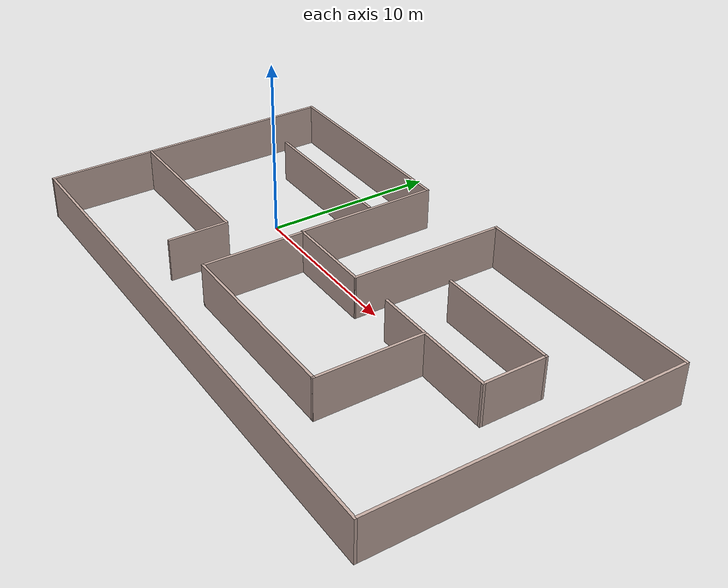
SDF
<?xml version='1.0'?>
<sdf version='1.7'>
  <model name='Floor1'>
    <pose>7.68321 -1.00431 0 0 -0 0</pose>
    <link name='Wall_15'>
      <collision name='Wall_15_Collision'>
        <geometry>
          <box>
            <size>5.25 0.15 2.5</size>
          </box>
        </geometry>
        <pose>0 0 1.25 0 -0 0</pose>
      </collision>
      <visual name='Wall_15_Visual'>
        <pose>0 0 1.25 0 -0 0</pose>
        <geometry>
          <box>
            <size>5.25 0.15 2.5</size>
          </box>
        </geometry>
        <material>
          <script>
            <uri>file://media/materials/scripts/gazebo.material</uri>
            <name>Gazebo/Grey</name>
          </script>
          <ambient>0.760784 0.662745 0.627451 1</ambient>
        </material>
        <meta>
          <layer>0</layer>
        </meta>
      </visual>
      <pose>-0.649999 0.05479 0 0 -0 0</pose>
    </link>
    <link name='Wall_16'>
      <collision name='Wall_16_Collision'>
        <geometry>
          <box>
            <size>9.02014 0.15 2.5</size>
          </box>
        </geometry>
        <pose>0 0 1.25 0 -0 0</pose>
      </collision>
      <visual name='Wall_16_Visual'>
        <pose>0 0 1.25 0 -0 0</pose>
        <geometry>
          <box>
            <size>9.02014 0.15 2.5</size>
          </box>
        </geometry>
        <material>
          <script>
            <uri>file://media/materials/scripts/gazebo.material</uri>
            <name>Gazebo/Grey</name>
          </script>
          <ambient>0.760784 0.662745 0.627451 1</ambient>
        </material>
        <meta>
          <layer>0</layer>
        </meta>
      </visual>
      <pose>1.925 4.48979 0 0 -0 1.56516</pose>
    </link>
    <link name='Wall_17'>
      <collision name='Wall_17_Collision'>
        <geometry>
          <box>
            <size>13.75 0.15 2.5</size>
          </box>
        </geometry>
        <pose>0 0 1.25 0 -0 0</pose>
      </collision>
      <visual name='Wall_17_Visual'>
        <pose>0 0 1.25 0 -0 0</pose>
        <geometry>
          <box>
            <size>13.75 0.15 2.5</size>
          </box>
        </geometry>
        <material>
          <script>
            <uri>file://media/materials/scripts/gazebo.material</uri>
            <name>Gazebo/Grey</name>
          </script>
          <ambient>0.760784 0.662745 0.627451 1</ambient>
        </material>
        <meta>
          <layer>0</layer>
        </meta>
      </visual>
      <pose>8.75 8.92479 0 0 -0 0</pose>
    </link>
    <link name='Wall_18'>
      <collision name='Wall_18_Collision'>
        <geometry>
          <box>
            <size>18 0.15 2.5</size>
          </box>
        </geometry>
        <pose>0 0 1.25 0 -0 0</pose>
      </collision>
      <visual name='Wall_18_Visual'>
        <pose>0 0 1.25 0 -0 0</pose>
        <geometry>
          <box>
            <size>18 0.15 2.5</size>
          </box>
        </geometry>
        <material>
          <script>
            <uri>file://media/materials/scripts/gazebo.material</uri>
            <name>Gazebo/Grey</name>
          </script>
          <ambient>0.760784 0.662745 0.627451 1</ambient>
        </material>
        <meta>
          <layer>0</layer>
        </meta>
      </visual>
      <pose>15.55 -0.00021 0 0 -0 -1.5708</pose>
    </link>
    <link name='Wall_19'>
      <collision name='Wall_19_Collision'>
        <geometry>
          <box>
            <size>31.25 0.15 2.5</size>
          </box>
        </geometry>
        <pose>0 0 1.25 0 -0 0</pose>
      </collision>
      <visual name='Wall_19_Visual'>
        <pose>0 0 1.25 0 -0 0</pose>
        <geometry>
          <box>
            <size>31.25 0.15 2.5</size>
          </box>
        </geometry>
        <material>
          <script>
            <uri>file://media/materials/scripts/gazebo.material</uri>
            <name>Gazebo/Grey</name>
          </script>
          <ambient>0.760784 0.662745 0.627451 1</ambient>
        </material>
        <meta>
          <layer>0</layer>
        </meta>
      </visual>
      <pose>0 -8.92521 0 0 -0 3.14159</pose>
    </link>
    <link name='Wall_20'>
      <collision name='Wall_20_Collision'>
        <geometry>
          <box>
            <size>17.25 0.15 2.5</size>
          </box>
        </geometry>
        <pose>0 0 1.25 0 -0 0</pose>
      </collision>
      <visual name='Wall_20_Visual'>
        <pose>0 0 1.25 0 -0 0</pose>
        <geometry>
          <box>
            <size>17.25 0.15 2.5</size>
          </box>
        </geometry>
        <material>
          <script>
            <uri>file://media/materials/scripts/gazebo.material</uri>
            <name>Gazebo/Grey</name>
          </script>
          <ambient>0.760784 0.662745 0.627451 1</ambient>
        </material>
        <meta>
          <layer>0</layer>
        </meta>
      </visual>
      <pose>-15.55 -0.37521 0 0 -0 1.5708</pose>
    </link>
    <link name='Wall_22'>
      <collision name='Wall_22_Collision'>
        <geometry>
          <box>
            <size>12.5 0.15 2.5</size>
          </box>
        </geometry>
        <pose>0 0 1.25 0 -0 0</pose>
      </collision>
      <visual name='Wall_22_Visual'>
        <pose>0 0 1.25 0 -0 0</pose>
        <geometry>
          <box>
            <size>12.5 0.15 2.5</size>
          </box>
        </geometry>
        <material>
          <script>
            <uri>file://media/materials/scripts/gazebo.material</uri>
            <name>Gazebo/Grey</name>
          </script>
          <ambient>0.760784 0.662745 0.627451 1</ambient>
        </material>
        <meta>
          <layer>0</layer>
        </meta>
      </visual>
      <pose>-9.375 8.17479 0 0 -0 0</pose>
    </link>
    <link name='Wall_23'>
      <collision name='Wall_23_Collision'>
        <geometry>
          <box>
            <size>8.25 0.15 2.5</size>
          </box>
        </geometry>
        <pose>0 0 1.25 0 -0 0</pose>
      </collision>
      <visual name='Wall_23_Visual'>
        <pose>0 0 1.25 0 -0 0</pose>
        <geometry>
          <box>
            <size>8.25 0.15 2.5</size>
          </box>
        </geometry>
        <material>
          <script>
            <uri>file://media/materials/scripts/gazebo.material</uri>
            <name>Gazebo/Grey</name>
          </script>
          <ambient>0.760784 0.662745 0.627451 1</ambient>
        </material>
        <meta>
          <layer>0</layer>
        </meta>
      </visual>
      <pose>-3.2 4.12479 0 0 -0 -1.5708</pose>
    </link>
    <link name='Wall_25'>
      <collision name='Wall_25_Collision'>
        <geometry>
          <box>
            <size>9.5 0.15 2.5</size>
          </box>
        </geometry>
        <pose>0 0 1.25 0 -0 0</pose>
      </collision>
      <visual name='Wall_25_Visual'>
        <pose>0 0 1.25 0 -0 0</pose>
        <geometry>
          <box>
            <size>9.5 0.15 2.5</size>
          </box>
        </geometry>
        <material>
          <script>
            <uri>file://media/materials/scripts/gazebo.material</uri>
            <name>Gazebo/Grey</name>
          </script>
          <ambient>0.760784 0.662745 0.627451 1</ambient>
        </material>
        <meta>
          <layer>0</layer>
        </meta>
      </visual>
      <pose>-10.8367 -2.89597 0 0 -0 0</pose>
    </link>
    <link name='Wall_26'>
      <collision name='Wall_26_Collision'>
        <geometry>
          <box>
            <size>3.5 0.15 2.5</size>
          </box>
        </geometry>
        <pose>0 0 1.25 0 -0 0</pose>
      </collision>
      <visual name='Wall_26_Visual'>
        <pose>0 0 1.25 0 -0 0</pose>
        <geometry>
          <box>
            <size>3.5 0.15 2.5</size>
          </box>
        </geometry>
        <material>
          <script>
            <uri>file://media/materials/scripts/gazebo.material</uri>
            <name>Gazebo/Grey</name>
          </script>
          <ambient>0.760784 0.662745 0.627451 1</ambient>
        </material>
        <meta>
          <layer>0</layer>
        </meta>
      </visual>
      <pose>-6.16168 -4.57097 0 0 -0 -1.5708</pose>
    </link>
    <link name='Wall_28'>
      <collision name='Wall_28_Collision'>
        <geometry>
          <box>
            <size>6 0.15 2.5</size>
          </box>
        </geometry>
        <pose>0 0 1.25 0 -0 0</pose>
      </collision>
      <visual name='Wall_28_Visual'>
        <pose>0 0 1.25 0 -0 0</pose>
        <geometry>
          <box>
            <size>6 0.15 2.5</size>
          </box>
        </geometry>
        <material>
          <script>
            <uri>file://media/materials/scripts/gazebo.material</uri>
            <name>Gazebo/Grey</name>
          </script>
          <ambient>0.760784 0.662745 0.627451 1</ambient>
        </material>
        <meta>
          <layer>0</layer>
        </meta>
      </visual>
      <pose>-3.13227 -2.90817 0 0 -0 -1.5708</pose>
    </link>
    <link name='Wall_3'>
      <collision name='Wall_3_Collision'>
        <geometry>
          <box>
            <size>9 0.15 2.5</size>
          </box>
        </geometry>
        <pose>0 0 1.25 0 -0 0</pose>
      </collision>
      <visual name='Wall_3_Visual'>
        <pose>0 0 1.25 0 -0 0</pose>
        <geometry>
          <box>
            <size>9 0.15 2.5</size>
          </box>
        </geometry>
        <material>
          <script>
            <uri>file://media/materials/scripts/gazebo.material</uri>
            <name>Gazebo/Grey</name>
          </script>
          <ambient>0.760784 0.662745 0.627451 1</ambient>
        </material>
        <meta>
          <layer>0</layer>
        </meta>
      </visual>
      <pose>-7.81286 4.4044 0 0 -0 3.14159</pose>
    </link>
    <link name='Wall_30'>
      <collision name='Wall_30_Collision'>
        <geometry>
          <box>
            <size>10.75 0.15 2.5</size>
          </box>
        </geometry>
        <pose>0 0 1.25 0 -0 0</pose>
      </collision>
      <visual name='Wall_30_Visual'>
        <pose>0 0 1.25 0 -0 0</pose>
        <geometry>
          <box>
            <size>10.75 0.15 2.5</size>
          </box>
        </geometry>
        <material>
          <script>
            <uri>file://media/materials/scripts/gazebo.material</uri>
            <name>Gazebo/Grey</name>
          </script>
          <ambient>0.760784 0.662745 0.627451 1</ambient>
        </material>
        <meta>
          <layer>0</layer>
        </meta>
      </visual>
      <pose>2.16773 -5.83317 0 0 -0 0</pose>
    </link>
    <link name='Wall_31'>
      <collision name='Wall_31_Collision'>
        <geometry>
          <box>
            <size>6.25 0.15 2.5</size>
          </box>
        </geometry>
        <pose>0 0 1.25 0 -0 0</pose>
      </collision>
      <visual name='Wall_31_Visual'>
        <pose>0 0 1.25 0 -0 0</pose>
        <geometry>
          <box>
            <size>6.25 0.15 2.5</size>
          </box>
        </geometry>
        <material>
          <script>
            <uri>file://media/materials/scripts/gazebo.material</uri>
            <name>Gazebo/Grey</name>
          </script>
          <ambient>0.760784 0.662745 0.627451 1</ambient>
        </material>
        <meta>
          <layer>0</layer>
        </meta>
      </visual>
      <pose>7.46773 -2.78317 0 0 -0 1.5708</pose>
    </link>
    <link name='Wall_32'>
      <collision name='Wall_32_Collision'>
        <geometry>
          <box>
            <size>3.25 0.15 2.5</size>
          </box>
        </geometry>
        <pose>0 0 1.25 0 -0 0</pose>
      </collision>
      <visual name='Wall_32_Visual'>
        <pose>0 0 1.25 0 -0 0</pose>
        <geometry>
          <box>
            <size>3.25 0.15 2.5</size>
          </box>
        </geometry>
        <material>
          <script>
            <uri>file://media/materials/scripts/gazebo.material</uri>
            <name>Gazebo/Grey</name>
          </script>
          <ambient>0.760784 0.662745 0.627451 1</ambient>
        </material>
        <meta>
          <layer>0</layer>
        </meta>
      </visual>
      <pose>5.91773 0.266833 0 0 -0 3.14159</pose>
    </link>
    <link name='Wall_34'>
      <collision name='Wall_34_Collision'>
        <geometry>
          <box>
            <size>4.5 0.15 2.5</size>
          </box>
        </geometry>
        <pose>0 0 1.25 0 -0 0</pose>
      </collision>
      <visual name='Wall_34_Visual'>
        <pose>0 0 1.25 0 -0 0</pose>
        <geometry>
          <box>
            <size>4.5 0.15 2.5</size>
          </box>
        </geometry>
        <material>
          <script>
            <uri>file://media/materials/scripts/gazebo.material</uri>
            <name>Gazebo/Grey</name>
          </script>
          <ambient>0.760784 0.662745 0.627451 1</ambient>
        </material>
        <meta>
          <layer>0</layer>
        </meta>
      </visual>
      <pose>9.64273 0.266833 0 0 -0 0</pose>
    </link>
    <link name='Wall_35'>
      <collision name='Wall_35_Collision'>
        <geometry>
          <box>
            <size>3.75 0.15 2.5</size>
          </box>
        </geometry>
        <pose>0 0 1.25 0 -0 0</pose>
      </collision>
      <visual name='Wall_35_Visual'>
        <pose>0 0 1.25 0 -0 0</pose>
        <geometry>
          <box>
            <size>3.75 0.15 2.5</size>
          </box>
        </geometry>
        <material>
          <script>
            <uri>file://media/materials/scripts/gazebo.material</uri>
            <name>Gazebo/Grey</name>
          </script>
          <ambient>0.760784 0.662745 0.627451 1</ambient>
        </material>
        <meta>
          <layer>0</layer>
        </meta>
      </visual>
      <pose>11.8177 2.06683 0 0 -0 1.5708</pose>
    </link>
    <link name='Wall_36'>
      <collision name='Wall_36_Collision'>
        <geometry>
          <box>
            <size>7.25 0.15 2.5</size>
          </box>
        </geometry>
        <pose>0 0 1.25 0 -0 0</pose>
      </collision>
      <visual name='Wall_36_Visual'>
        <pose>0 0 1.25 0 -0 0</pose>
        <geometry>
          <box>
            <size>7.25 0.15 2.5</size>
          </box>
        </geometry>
        <material>
          <script>
            <uri>file://media/materials/scripts/gazebo.material</uri>
            <name>Gazebo/Grey</name>
          </script>
          <ambient>0.760784 0.662745 0.627451 1</ambient>
        </material>
        <meta>
          <layer>0</layer>
        </meta>
      </visual>
      <pose>8.26773 3.86683 0 0 -0 3.14159</pose>
    </link>
    <static>1</static>
  </model>
</sdf>
